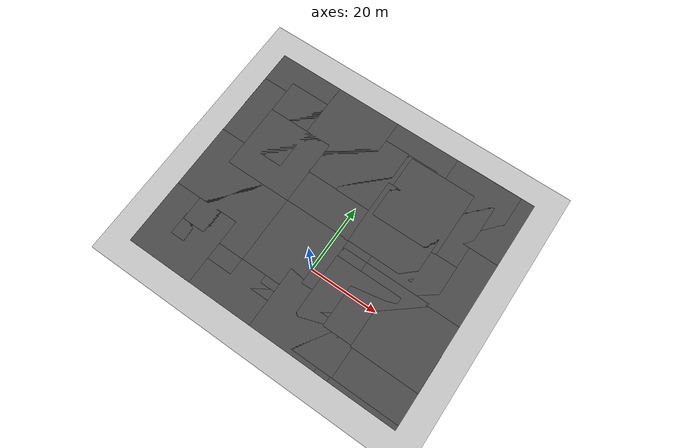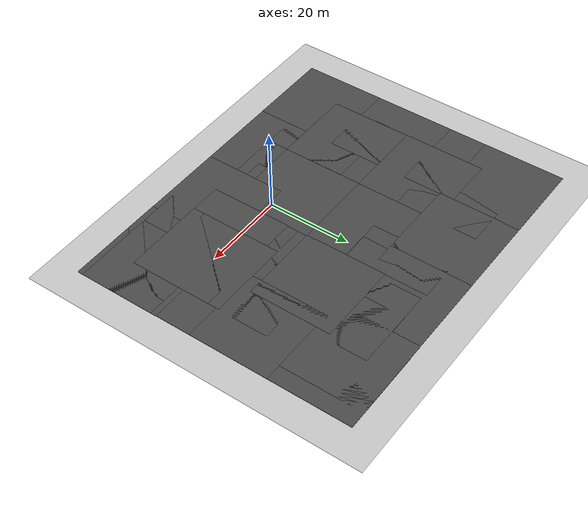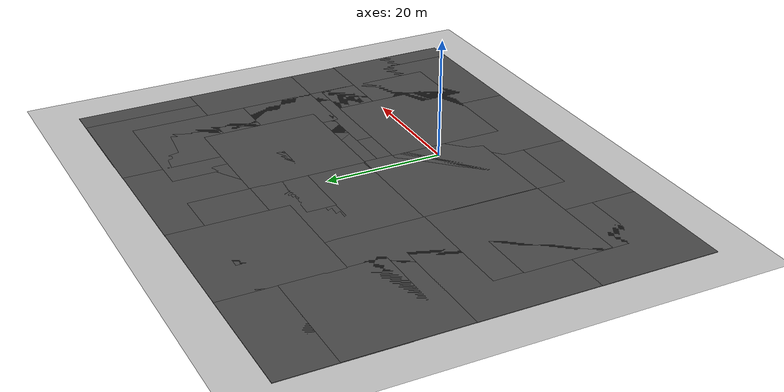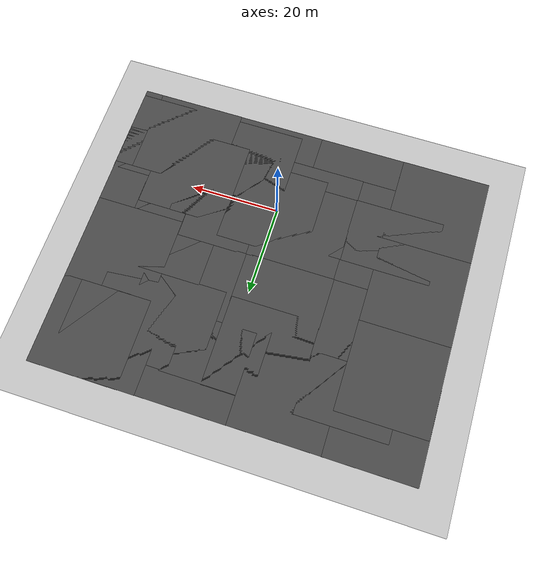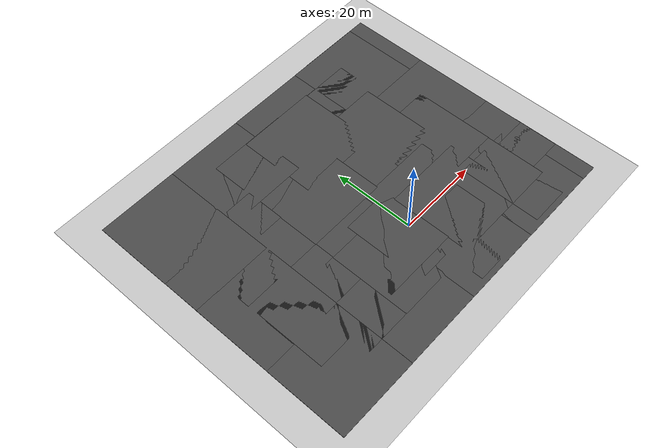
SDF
<sdf version="1.7">
 <world name="default">
  <light name="sun" type="directional">
   <pose>0 0 10 0 -0 0</pose>
   <diffuse>0.8 0.8 0.8 1</diffuse>
   <specular>0.2 0.2 0.2 1</specular>
   <attenuation>
    <range>1000</range>
    <constant>0.9</constant>
    <linear>0.01</linear>
    <quadratic>0.001</quadratic>
   </attenuation>
   <direction>-0.5 0.1 -0.9</direction>
   <spot><inner_angle>0</inner_angle><outer_angle>0</outer_angle><falloff>0</falloff></spot>
  </light>
  <model name="ground_plane">
   <static>1</static>
   <link name="link">
    <collision name="collision">
     <geometry><plane><normal>0 0 1</normal><size>100 100</size></plane></geometry>
     <surface>
      <contact><collide_bitmask>65535</collide_bitmask></contact>
      <friction><ode><mu>100</mu><mu2>50</mu2></ode></friction>
     </surface>
    </collision>
    <visual name="visual">
     <cast_shadows>0</cast_shadows>
     <geometry><plane><normal>0 0 1</normal><size>100 100</size></plane></geometry>
     <material>
      <script><uri>file://media/materials/scripts/gazebo.material</uri><name>Gazebo/Grey</name></script>
     </material>
    </visual>
   </link>
  </model>
  <gravity>0 0 -9.8</gravity>
  <magnetic_field>6e-06 2.3e-05 -4.2e-05</magnetic_field>
  <atmosphere type="adiabatic"/>
  <physics type="ode">
   <max_step_size>0.001</max_step_size>
   <real_time_factor>1</real_time_factor>
   <real_time_update_rate>1000</real_time_update_rate>
  </physics>
  <scene><ambient>0.4 0.4 0.4 1</ambient><background>0.7 0.7 0.7 1</background><shadows>1</shadows></scene>
  <spherical_coordinates>
   <surface_model>EARTH_WGS84</surface_model>
   <latitude_deg>0</latitude_deg>
   <longitude_deg>0</longitude_deg>
   <elevation>0</elevation>
   <heading_deg>0</heading_deg>
  </spherical_coordinates>
  <model name="asphalt_plane">
   <static>1</static>
   <link name="link">
    <collision name="collision"><geometry><box><size>20 20 0.1</size></box></geometry></collision>
    <visual name="visual">
     <cast_shadows>0</cast_shadows>
     <geometry><box><size>20 20 0.1</size></box></geometry>
     <material>
      <script>
       <uri>model://asphalt_plane/materials/scripts</uri>
       <uri>model://asphalt_plane/materials/textures</uri>
       <name>vrc/asphalt</name>
      </script>
     </material>
    </visual>
   </link>
   <pose>-26.4768 1.81709 0 0 -0 0</pose>
  </model>
  <model name="asphalt_plane_0">
   <static>1</static>
   <link name="link">
    <collision name="collision"><geometry><box><size>20 20 0.1</size></box></geometry></collision>
    <visual name="visual">
     <cast_shadows>0</cast_shadows>
     <geometry><box><size>20 20 0.1</size></box></geometry>
     <material>
      <script>
       <uri>model://asphalt_plane/materials/scripts</uri>
       <uri>model://asphalt_plane/materials/textures</uri>
       <name>vrc/asphalt</name>
      </script>
     </material>
    </visual>
   </link>
   <pose>-6.5836 1.8919 0 0 -0 0</pose>
  </model>
  <model name="asphalt_plane_1">
   <static>1</static>
   <link name="link">
    <collision name="collision"><geometry><box><size>20 20 0.1</size></box></geometry></collision>
    <visual name="visual">
     <cast_shadows>0</cast_shadows>
     <geometry><box><size>20 20 0.1</size></box></geometry>
     <material>
      <script>
       <uri>model://asphalt_plane/materials/scripts</uri>
       <uri>model://asphalt_plane/materials/textures</uri>
       <name>vrc/asphalt</name>
      </script>
     </material>
    </visual>
   </link>
   <pose>9.30144 2.09141 0 0 -0 0</pose>
  </model>
  <model name="asphalt_plane_2">
   <static>1</static>
   <link name="link">
    <collision name="collision"><geometry><box><size>20 20 0.1</size></box></geometry></collision>
    <visual name="visual">
     <cast_shadows>0</cast_shadows>
     <geometry><box><size>20 20 0.1</size></box></geometry>
     <material>
      <script>
       <uri>model://asphalt_plane/materials/scripts</uri>
       <uri>model://asphalt_plane/materials/textures</uri>
       <name>vrc/asphalt</name>
      </script>
     </material>
    </visual>
   </link>
   <pose>-26.583 21.7683 0 0 -0 0</pose>
  </model>
  <model name="asphalt_plane_3">
   <static>1</static>
   <link name="link">
    <collision name="collision"><geometry><box><size>20 20 0.1</size></box></geometry></collision>
    <visual name="visual">
     <cast_shadows>0</cast_shadows>
     <geometry><box><size>20 20 0.1</size></box></geometry>
     <material>
      <script>
       <uri>model://asphalt_plane/materials/scripts</uri>
       <uri>model://asphalt_plane/materials/textures</uri>
       <name>vrc/asphalt</name>
      </script>
     </material>
    </visual>
   </link>
   <pose>-6.70365 21.7013 0 0 -0 0</pose>
  </model>
  <model name="asphalt_plane_4">
   <static>1</static>
   <link name="link">
    <collision name="collision"><geometry><box><size>20 20 0.1</size></box></geometry></collision>
    <visual name="visual">
     <cast_shadows>0</cast_shadows>
     <geometry><box><size>20 20 0.1</size></box></geometry>
     <material>
      <script>
       <uri>model://asphalt_plane/materials/scripts</uri>
       <uri>model://asphalt_plane/materials/textures</uri>
       <name>vrc/asphalt</name>
      </script>
     </material>
    </visual>
   </link>
   <pose>13.1321 21.8284 0 0 -0 0</pose>
  </model>
  <model name="asphalt_plane_5">
   <static>1</static>
   <link name="link">
    <collision name="collision"><geometry><box><size>20 20 0.1</size></box></geometry></collision>
    <visual name="visual">
     <cast_shadows>0</cast_shadows>
     <geometry><box><size>20 20 0.1</size></box></geometry>
     <material>
      <script>
       <uri>model://asphalt_plane/materials/scripts</uri>
       <uri>model://asphalt_plane/materials/textures</uri>
       <name>vrc/asphalt</name>
      </script>
     </material>
    </visual>
   </link>
   <pose>14.5584 31.6296 0 0 -0 0</pose>
  </model>
  <model name="asphalt_plane_6">
   <static>1</static>
   <link name="link">
    <collision name="collision"><geometry><box><size>20 20 0.1</size></box></geometry></collision>
    <visual name="visual">
     <cast_shadows>0</cast_shadows>
     <geometry><box><size>20 20 0.1</size></box></geometry>
     <material>
      <script>
       <uri>model://asphalt_plane/materials/scripts</uri>
       <uri>model://asphalt_plane/materials/textures</uri>
       <name>vrc/asphalt</name>
      </script>
     </material>
    </visual>
   </link>
   <pose>20.7869 31.7066 0 0 -0 0</pose>
  </model>
  <model name="asphalt_plane_7">
   <static>1</static>
   <link name="link">
    <collision name="collision"><geometry><box><size>20 20 0.1</size></box></geometry></collision>
    <visual name="visual">
     <cast_shadows>0</cast_shadows>
     <geometry><box><size>20 20 0.1</size></box></geometry>
     <material>
      <script>
       <uri>model://asphalt_plane/materials/scripts</uri>
       <uri>model://asphalt_plane/materials/textures</uri>
       <name>vrc/asphalt</name>
      </script>
     </material>
    </visual>
   </link>
   <pose>20.8327 11.859 0 0 -0 0</pose>
  </model>
  <model name="asphalt_plane_8">
   <static>1</static>
   <link name="link">
    <collision name="collision"><geometry><box><size>20 20 0.1</size></box></geometry></collision>
    <visual name="visual">
     <cast_shadows>0</cast_shadows>
     <geometry><box><size>20 20 0.1</size></box></geometry>
     <material>
      <script>
       <uri>model://asphalt_plane/materials/scripts</uri>
       <uri>model://asphalt_plane/materials/textures</uri>
       <name>vrc/asphalt</name>
      </script>
     </material>
    </visual>
   </link>
   <pose>20.7399 -0.379296 0 0 -0 0</pose>
  </model>
  <model name="asphalt_plane_9">
   <static>1</static>
   <link name="link">
    <collision name="collision"><geometry><box><size>20 20 0.1</size></box></geometry></collision>
    <visual name="visual">
     <cast_shadows>0</cast_shadows>
     <geometry><box><size>20 20 0.1</size></box></geometry>
     <material>
      <script>
       <uri>model://asphalt_plane/materials/scripts</uri>
       <uri>model://asphalt_plane/materials/textures</uri>
       <name>vrc/asphalt</name>
      </script>
     </material>
    </visual>
   </link>
   <pose>1.01672 -0.40772 0 0 -0 0</pose>
  </model>
  <model name="asphalt_plane_10">
   <static>1</static>
   <link name="link">
    <collision name="collision"><geometry><box><size>20 20 0.1</size></box></geometry></collision>
    <visual name="visual">
     <cast_shadows>0</cast_shadows>
     <geometry><box><size>20 20 0.1</size></box></geometry>
     <material>
      <script>
       <uri>model://asphalt_plane/materials/scripts</uri>
       <uri>model://asphalt_plane/materials/textures</uri>
       <name>vrc/asphalt</name>
      </script>
     </material>
    </visual>
   </link>
   <pose>-26.6151 -3.11844 0 0 -0 0</pose>
  </model>
  <model name="asphalt_plane_11">
   <static>1</static>
   <link name="link">
    <collision name="collision"><geometry><box><size>20 20 0.1</size></box></geometry></collision>
    <visual name="visual">
     <cast_shadows>0</cast_shadows>
     <geometry><box><size>20 20 0.1</size></box></geometry>
     <material>
      <script>
       <uri>model://asphalt_plane/materials/scripts</uri>
       <uri>model://asphalt_plane/materials/textures</uri>
       <name>vrc/asphalt</name>
      </script>
     </material>
    </visual>
   </link>
   <pose>-6.71237 -3.17818 0 0 -0 0</pose>
  </model>
  <model name="asphalt_plane_12">
   <static>1</static>
   <link name="link">
    <collision name="collision"><geometry><box><size>20 20 0.1</size></box></geometry></collision>
    <visual name="visual">
     <cast_shadows>0</cast_shadows>
     <geometry><box><size>20 20 0.1</size></box></geometry>
     <material>
      <script>
       <uri>model://asphalt_plane/materials/scripts</uri>
       <uri>model://asphalt_plane/materials/textures</uri>
       <name>vrc/asphalt</name>
      </script>
     </material>
    </visual>
   </link>
   <pose>13.239 -3.15588 0 0 -0 0</pose>
  </model>
  <model name="asphalt_plane_13">
   <static>1</static>
   <link name="link">
    <collision name="collision"><geometry><box><size>20 20 0.1</size></box></geometry></collision>
    <visual name="visual">
     <cast_shadows>0</cast_shadows>
     <geometry><box><size>20 20 0.1</size></box></geometry>
     <material>
      <script>
       <uri>model://asphalt_plane/materials/scripts</uri>
       <uri>model://asphalt_plane/materials/textures</uri>
       <name>vrc/asphalt</name>
      </script>
     </material>
    </visual>
   </link>
   <pose>20.76 -3.19075 0 0 -0 0</pose>
  </model>
  <model name="asphalt_plane_14">
   <static>1</static>
   <link name="link">
    <collision name="collision"><geometry><box><size>20 20 0.1</size></box></geometry></collision>
    <visual name="visual">
     <cast_shadows>0</cast_shadows>
     <geometry><box><size>20 20 0.1</size></box></geometry>
     <material>
      <script>
       <uri>model://asphalt_plane/materials/scripts</uri>
       <uri>model://asphalt_plane/materials/textures</uri>
       <name>vrc/asphalt</name>
      </script>
     </material>
    </visual>
   </link>
   <pose>-26.5785 32.0369 0 0 -0 0</pose>
  </model>
  <model name="asphalt_plane_15">
   <static>1</static>
   <link name="link">
    <collision name="collision"><geometry><box><size>20 20 0.1</size></box></geometry></collision>
    <visual name="visual">
     <cast_shadows>0</cast_shadows>
     <geometry><box><size>20 20 0.1</size></box></geometry>
     <material>
      <script>
       <uri>model://asphalt_plane/materials/scripts</uri>
       <uri>model://asphalt_plane/materials/textures</uri>
       <name>vrc/asphalt</name>
      </script>
     </material>
    </visual>
   </link>
   <pose>-6.77978 32.0574 0 0 -0 0</pose>
  </model>
  <model name="asphalt_plane_16">
   <static>1</static>
   <link name="link">
    <collision name="collision"><geometry><box><size>20 20 0.1</size></box></geometry></collision>
    <visual name="visual">
     <cast_shadows>0</cast_shadows>
     <geometry><box><size>20 20 0.1</size></box></geometry>
     <material>
      <script>
       <uri>model://asphalt_plane/materials/scripts</uri>
       <uri>model://asphalt_plane/materials/textures</uri>
       <name>vrc/asphalt</name>
      </script>
     </material>
    </visual>
   </link>
   <pose>2.53821 31.9617 0 0 -0 0</pose>
  </model>
  <model name="asphalt_plane_17">
   <static>1</static>
   <link name="link">
    <collision name="collision"><geometry><box><size>20 20 0.1</size></box></geometry></collision>
    <visual name="visual">
     <cast_shadows>0</cast_shadows>
     <geometry><box><size>20 20 0.1</size></box></geometry>
     <material>
      <script>
       <uri>model://asphalt_plane/materials/scripts</uri>
       <uri>model://asphalt_plane/materials/textures</uri>
       <name>vrc/asphalt</name>
      </script>
     </material>
    </visual>
   </link>
   <pose>-34.213 -10.9625 0 0 -0 0</pose>
  </model>
  <model name="asphalt_plane_18">
   <static>1</static>
   <link name="link">
    <collision name="collision"><geometry><box><size>20 20 0.1</size></box></geometry></collision>
    <visual name="visual">
     <cast_shadows>0</cast_shadows>
     <geometry><box><size>20 20 0.1</size></box></geometry>
     <material>
      <script>
       <uri>model://asphalt_plane/materials/scripts</uri>
       <uri>model://asphalt_plane/materials/textures</uri>
       <name>vrc/asphalt</name>
      </script>
     </material>
    </visual>
   </link>
   <pose>-34.1956 8.94814 0 0 -0 0</pose>
  </model>
  <model name="asphalt_plane_19">
   <static>1</static>
   <link name="link">
    <collision name="collision"><geometry><box><size>20 20 0.1</size></box></geometry></collision>
    <visual name="visual">
     <cast_shadows>0</cast_shadows>
     <geometry><box><size>20 20 0.1</size></box></geometry>
     <material>
      <script>
       <uri>model://asphalt_plane/materials/scripts</uri>
       <uri>model://asphalt_plane/materials/textures</uri>
       <name>vrc/asphalt</name>
      </script>
     </material>
    </visual>
   </link>
   <pose>-34.1754 28.8587 0 0 -0 0</pose>
  </model>
  <model name="asphalt_plane_20">
   <static>1</static>
   <link name="link">
    <collision name="collision"><geometry><box><size>20 20 0.1</size></box></geometry></collision>
    <visual name="visual">
     <cast_shadows>0</cast_shadows>
     <geometry><box><size>20 20 0.1</size></box></geometry>
     <material>
      <script>
       <uri>model://asphalt_plane/materials/scripts</uri>
       <uri>model://asphalt_plane/materials/textures</uri>
       <name>vrc/asphalt</name>
      </script>
     </material>
    </visual>
   </link>
   <pose>-34.2147 38.2854 0 0 -0 0</pose>
  </model>
  <model name="asphalt_plane_21">
   <static>1</static>
   <link name="link">
    <collision name="collision"><geometry><box><size>20 20 0.1</size></box></geometry></collision>
    <visual name="visual">
     <cast_shadows>0</cast_shadows>
     <geometry><box><size>20 20 0.1</size></box></geometry>
     <material>
      <script>
       <uri>model://asphalt_plane/materials/scripts</uri>
       <uri>model://asphalt_plane/materials/textures</uri>
       <name>vrc/asphalt</name>
      </script>
     </material>
    </visual>
   </link>
   <pose>-14.3576 38.2735 0 0 -0 0</pose>
  </model>
  <model name="asphalt_plane_22">
   <static>1</static>
   <link name="link">
    <collision name="collision"><geometry><box><size>20 20 0.1</size></box></geometry></collision>
    <visual name="visual">
     <cast_shadows>0</cast_shadows>
     <geometry><box><size>20 20 0.1</size></box></geometry>
     <material>
      <script>
       <uri>model://asphalt_plane/materials/scripts</uri>
       <uri>model://asphalt_plane/materials/textures</uri>
       <name>vrc/asphalt</name>
      </script>
     </material>
    </visual>
   </link>
   <pose>5.50526 38.301 0 0 -0 0</pose>
  </model>
  <model name="asphalt_plane_23">
   <static>1</static>
   <link name="link">
    <collision name="collision"><geometry><box><size>20 20 0.1</size></box></geometry></collision>
    <visual name="visual">
     <cast_shadows>0</cast_shadows>
     <geometry><box><size>20 20 0.1</size></box></geometry>
     <material>
      <script>
       <uri>model://asphalt_plane/materials/scripts</uri>
       <uri>model://asphalt_plane/materials/textures</uri>
       <name>vrc/asphalt</name>
      </script>
     </material>
    </visual>
   </link>
   <pose>25.3501 38.3395 0 0 -0 0</pose>
  </model>
  <model name="asphalt_plane_24">
   <static>1</static>
   <link name="link">
    <collision name="collision"><geometry><box><size>20 20 0.1</size></box></geometry></collision>
    <visual name="visual">
     <cast_shadows>0</cast_shadows>
     <geometry><box><size>20 20 0.1</size></box></geometry>
     <material>
      <script>
       <uri>model://asphalt_plane/materials/scripts</uri>
       <uri>model://asphalt_plane/materials/textures</uri>
       <name>vrc/asphalt</name>
      </script>
     </material>
    </visual>
   </link>
   <pose>29.3616 38.3926 0 0 -0 0</pose>
  </model>
  <model name="asphalt_plane_25">
   <static>1</static>
   <link name="link">
    <collision name="collision"><geometry><box><size>20 20 0.1</size></box></geometry></collision>
    <visual name="visual">
     <cast_shadows>0</cast_shadows>
     <geometry><box><size>20 20 0.1</size></box></geometry>
     <material>
      <script>
       <uri>model://asphalt_plane/materials/scripts</uri>
       <uri>model://asphalt_plane/materials/textures</uri>
       <name>vrc/asphalt</name>
      </script>
     </material>
    </visual>
   </link>
   <pose>29.3616 18.927 0 0 -0 0</pose>
  </model>
  <model name="asphalt_plane_26">
   <static>1</static>
   <link name="link">
    <collision name="collision"><geometry><box><size>20 20 0.1</size></box></geometry></collision>
    <visual name="visual">
     <cast_shadows>0</cast_shadows>
     <geometry><box><size>20 20 0.1</size></box></geometry>
     <material>
      <script>
       <uri>model://asphalt_plane/materials/scripts</uri>
       <uri>model://asphalt_plane/materials/textures</uri>
       <name>vrc/asphalt</name>
      </script>
     </material>
    </visual>
   </link>
   <pose>29.3726 -0.715322 0 0 -0 0</pose>
  </model>
  <model name="asphalt_plane_27">
   <static>1</static>
   <link name="link">
    <collision name="collision"><geometry><box><size>20 20 0.1</size></box></geometry></collision>
    <visual name="visual">
     <cast_shadows>0</cast_shadows>
     <geometry><box><size>20 20 0.1</size></box></geometry>
     <material>
      <script>
       <uri>model://asphalt_plane/materials/scripts</uri>
       <uri>model://asphalt_plane/materials/textures</uri>
       <name>vrc/asphalt</name>
      </script>
     </material>
    </visual>
   </link>
   <pose>29.4319 -9.64355 0 0 -0 0</pose>
  </model>
  <model name="asphalt_plane_28">
   <static>1</static>
   <link name="link">
    <collision name="collision"><geometry><box><size>20 20 0.1</size></box></geometry></collision>
    <visual name="visual">
     <cast_shadows>0</cast_shadows>
     <geometry><box><size>20 20 0.1</size></box></geometry>
     <material>
      <script>
       <uri>model://asphalt_plane/materials/scripts</uri>
       <uri>model://asphalt_plane/materials/textures</uri>
       <name>vrc/asphalt</name>
      </script>
     </material>
    </visual>
   </link>
   <pose>9.90828 -9.64526 0 0 -0 0</pose>
  </model>
  <model name="asphalt_plane_29">
   <static>1</static>
   <link name="link">
    <collision name="collision"><geometry><box><size>20 20 0.1</size></box></geometry></collision>
    <visual name="visual">
     <cast_shadows>0</cast_shadows>
     <geometry><box><size>20 20 0.1</size></box></geometry>
     <material>
      <script>
       <uri>model://asphalt_plane/materials/scripts</uri>
       <uri>model://asphalt_plane/materials/textures</uri>
       <name>vrc/asphalt</name>
      </script>
     </material>
    </visual>
   </link>
   <pose>-14.211 -10.9299 0 0 -0 0</pose>
  </model>
  <model name="asphalt_plane_30">
   <static>1</static>
   <link name="link">
    <collision name="collision"><geometry><box><size>20 20 0.1</size></box></geometry></collision>
    <visual name="visual">
     <cast_shadows>0</cast_shadows>
     <geometry><box><size>20 20 0.1</size></box></geometry>
     <material>
      <script>
       <uri>model://asphalt_plane/materials/scripts</uri>
       <uri>model://asphalt_plane/materials/textures</uri>
       <name>vrc/asphalt</name>
      </script>
     </material>
    </visual>
   </link>
   <pose>5.42169 -10.9341 0 0 -0 0</pose>
  </model>
  <model name="asphalt_plane_31">
   <static>1</static>
   <link name="link">
    <collision name="collision"><geometry><box><size>20 20 0.1</size></box></geometry></collision>
    <visual name="visual">
     <cast_shadows>0</cast_shadows>
     <geometry><box><size>20 20 0.1</size></box></geometry>
     <material>
      <script>
       <uri>model://asphalt_plane/materials/scripts</uri>
       <uri>model://asphalt_plane/materials/textures</uri>
       <name>vrc/asphalt</name>
      </script>
     </material>
    </visual>
   </link>
   <pose>25.3327 -10.9758 0 0 -0 0</pose>
  </model>
  <model name="asphalt_plane_32">
   <static>1</static>
   <link name="link">
    <collision name="collision"><geometry><box><size>20 20 0.1</size></box></geometry></collision>
    <visual name="visual">
     <cast_shadows>0</cast_shadows>
     <geometry><box><size>20 20 0.1</size></box></geometry>
     <material>
      <script>
       <uri>model://asphalt_plane/materials/scripts</uri>
       <uri>model://asphalt_plane/materials/textures</uri>
       <name>vrc/asphalt</name>
      </script>
     </material>
    </visual>
   </link>
   <pose>29.4183 -10.9809 0 0 -0 0</pose>
  </model>
 </world>
</sdf>
